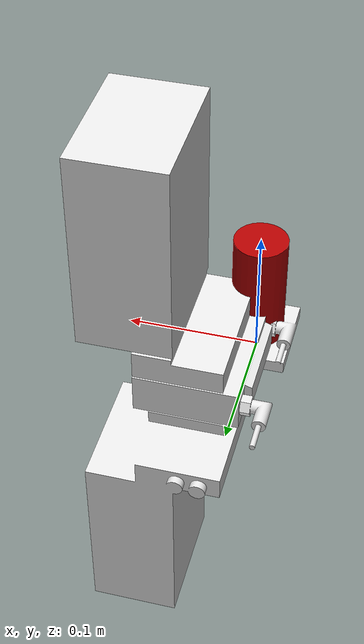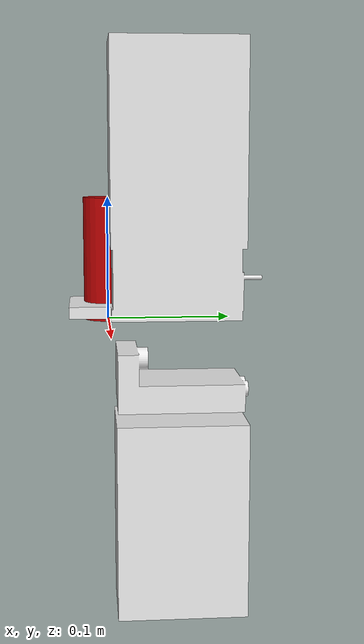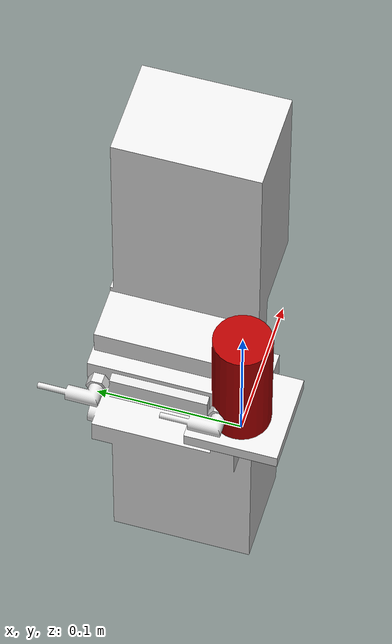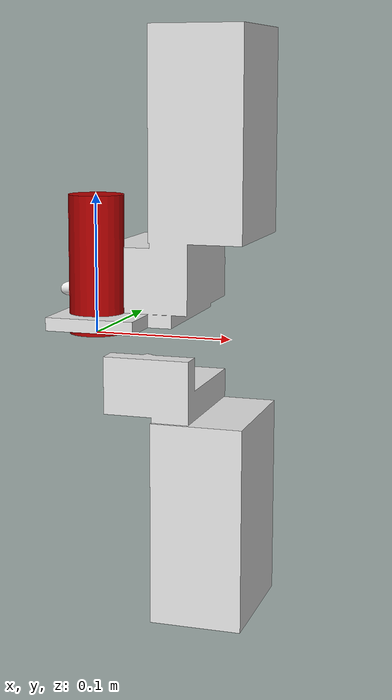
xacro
<?xml version="1.0" ?>
<robot name="za6" xmlns:xacro="http://ros.org/wiki/xacro">
  <xacro:include
      filename="$(find za6_tools)/urdf/versabuilt_multigrip_macro.xacro"/>

  <material name="main_Red">
    <color rgba="0.7 0.0 0.0 0.99"/>
  </material>

  <link name="world"/>
  <link name="base_link">
    <visual>
      <geometry>
        <cylinder length="0.1" radius="0.02"/>
      </geometry>
      <origin rpy="0 0 0" xyz="0 0 0.05"/>
      <material name="main_Red"/>
    </visual>
  </link>

  <joint name="world-base" type="fixed">
    <parent link="world"/>
    <child link="base_link"/>
  </joint>

  <xacro:versabuilt_multigrip_macro
      prefix=""
      connected_to="base_link"/>
</robot>

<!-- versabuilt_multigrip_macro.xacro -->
<robot xmlns:xacro="http://www.ros.org/wiki/xacro">
  <xacro:macro name="versabuilt_multigrip_macro" params="prefix connected_to">

    <material name="${prefix}Aluminium">
      <color rgba="0.9 0.9 0.9 0.99"/>
    </material>

    <!-- link list -->
    <link name="${prefix}za6_multigrip_adapter">
    </link>

    <link name="${prefix}multigrip_base_and_fixed_jaw">
      <visual>
        <geometry>
          <mesh filename="package://za6_tools/meshes/versabuilt_multigrip_base_and_fixed_jaw.stl"/>
        </geometry>
        <origin rpy="0.0 0.0 0.0" xyz="0 0 0"/>
        <material name="${prefix}Aluminium">
        </material>
      </visual>
      <collision>
        <geometry>
          <mesh filename="package://za6_tools/meshes/versabuilt_multigrip_base_and_fixed_jaw_collision.stl"/>
        </geometry>
        <origin rpy="0.0 0.0 0.0" xyz="0 0 0"/>
      </collision>
      <inertial>
        <mass value="100"/>
        <inertia ixx="1.0" ixy="0.0" ixz="0.0" iyy="1.0" iyz="0.0" izz="1.0"/>
      </inertial>
    </link>

    <link name="${prefix}multigrip_moving_jaw">
      <visual>
        <geometry>
          <mesh filename="package://za6_tools/meshes/versabuilt_multigrip_moving_jaw.stl"/>
        </geometry>
        <origin rpy="0.0 0.0 0.0" xyz="0 0 0"/>
        <material name="${prefix}Aluminium">
        </material>
      </visual>
      <collision>
        <geometry>
          <mesh filename="package://za6_tools/meshes/versabuilt_multigrip_moving_jaw_collision.stl"/>
        </geometry>
        <origin rpy="0.0 0.0 0.0" xyz="0 0 0"/>
      </collision>
      <inertial>
        <mass value="100"/>
        <inertia ixx="1.0" ixy="0.0" ixz="0.0" iyy="1.0" iyz="0.0" izz="1.0"/>
      </inertial>
    </link>

    <!-- joint list -->
    <joint name="${prefix}flange-multigrip_adapter" type="fixed">
      <parent link="${connected_to}"/>
      <child link="${prefix}za6_multigrip_adapter"/>
      <axis xyz="0 0 0"/>
      <origin rpy="0.0 0.0 0.0" xyz="0 0 0"/>
    </joint>

    <joint name="${prefix}adapter-multigrip_base_and_fixed_jaw" type="fixed">
      <parent link="${prefix}za6_multigrip_adapter"/>
      <child link="${prefix}multigrip_base_and_fixed_jaw"/>
      <axis xyz="0 0 1"/>
      <origin xyz="0 0 0" rpy="${pi/2.0} -${pi/2.0} -${pi/2.0}"/>
    </joint>

    <joint name="${prefix}multigrip_moving_jaw_joint" type="fixed">
      <parent link="${prefix}multigrip_base_and_fixed_jaw" />
      <child link="${prefix}multigrip_moving_jaw" />
      <axis xyz="0 0 1"/>
      <origin xyz="0.0 0 0.0" rpy="0 0 ${pi}" />
    </joint>

  </xacro:macro>
</robot>
